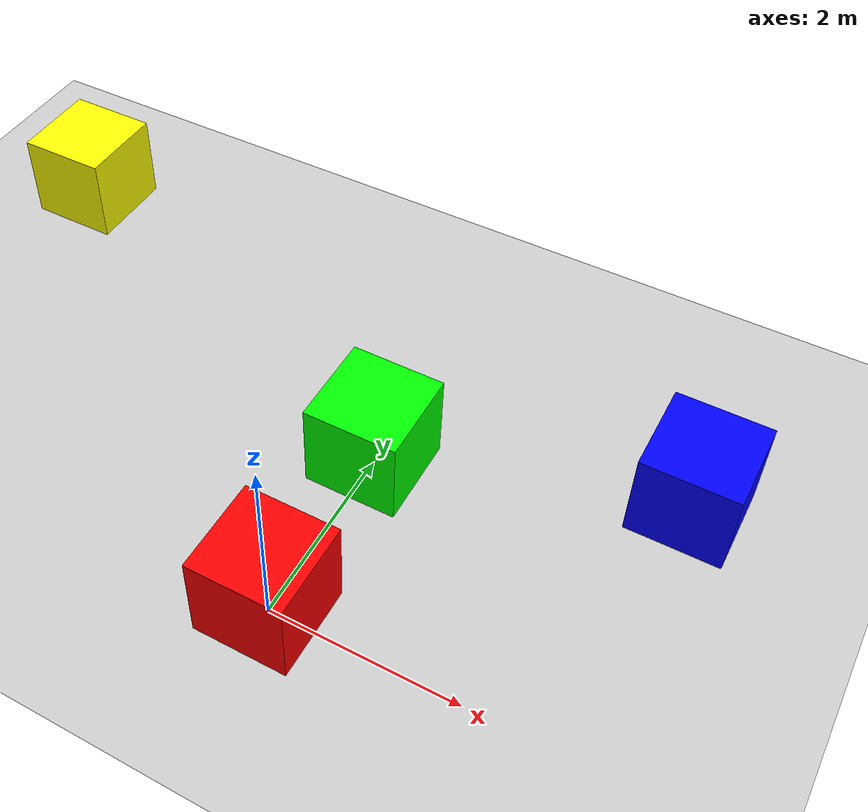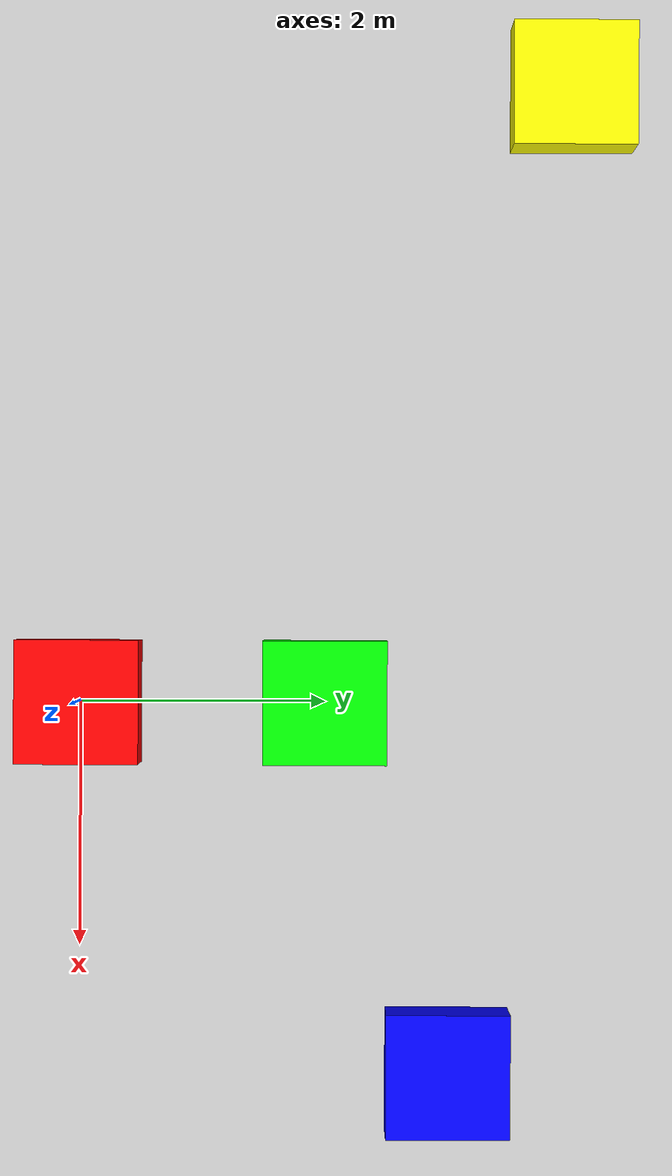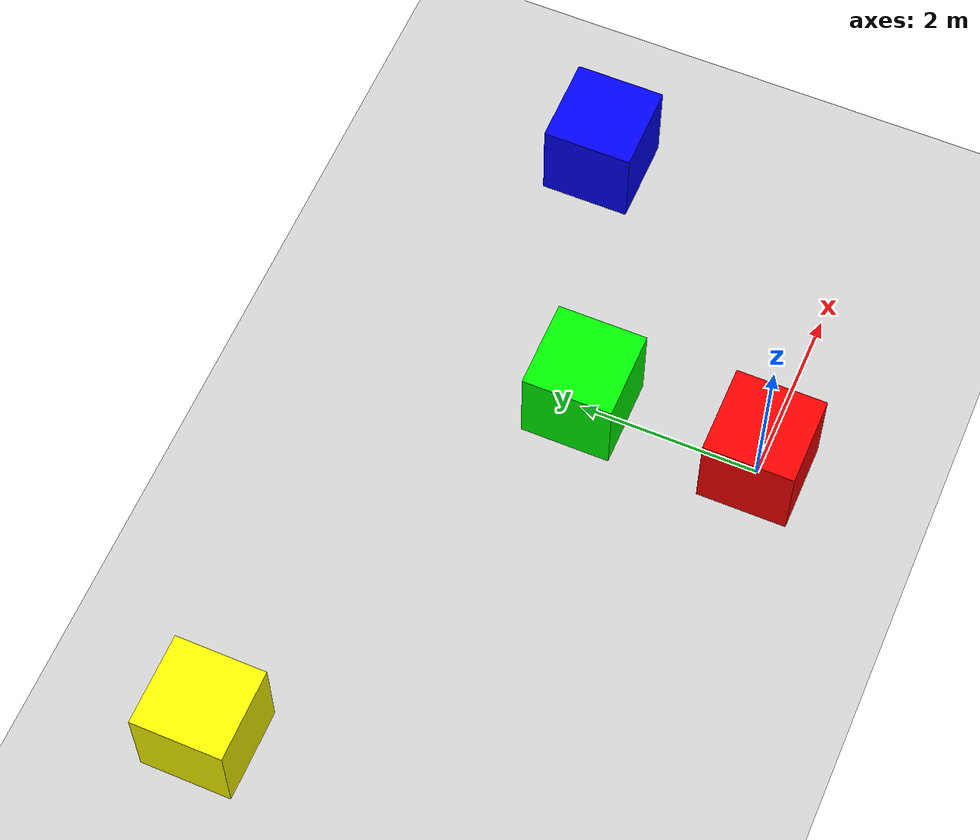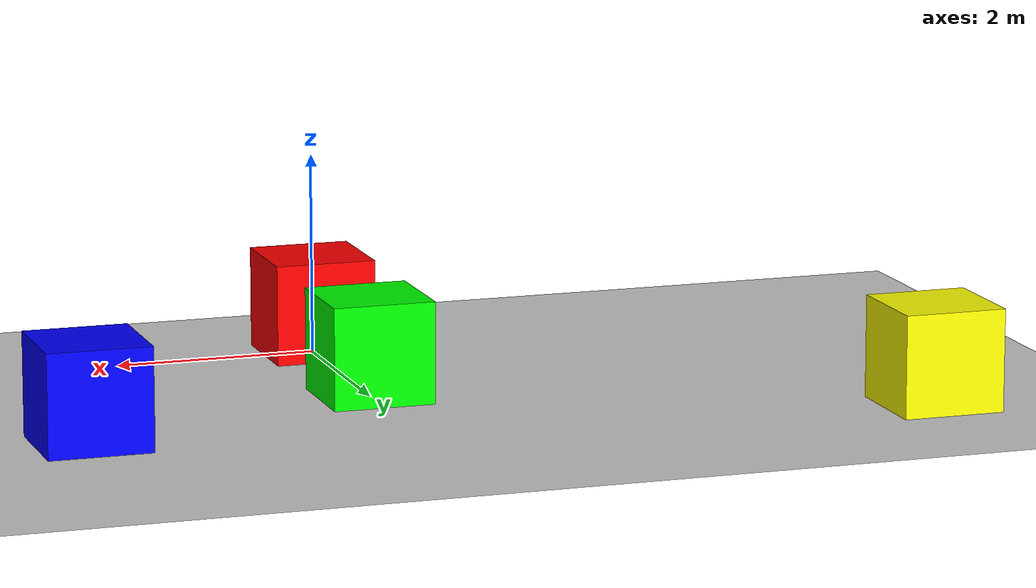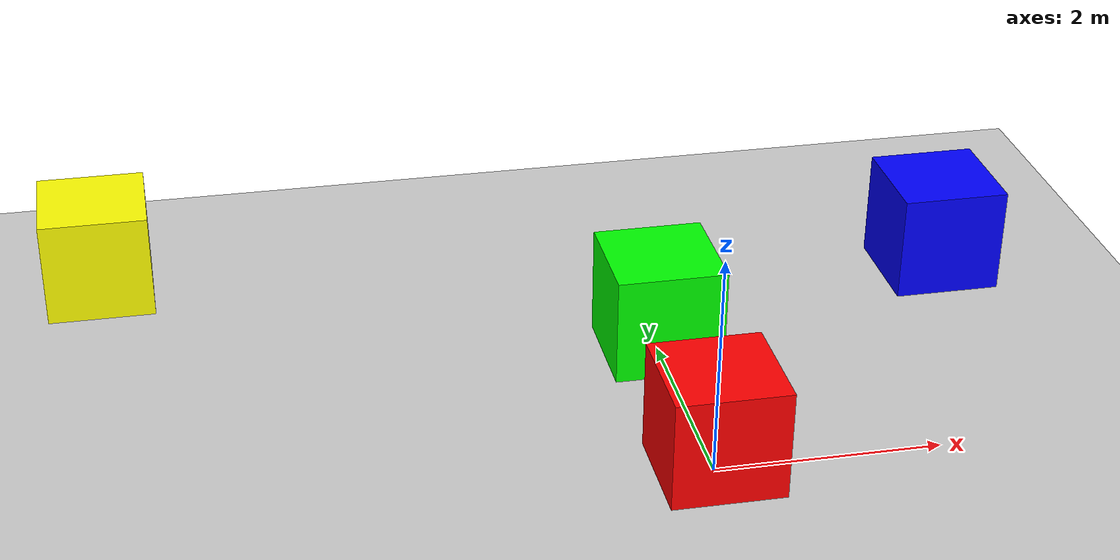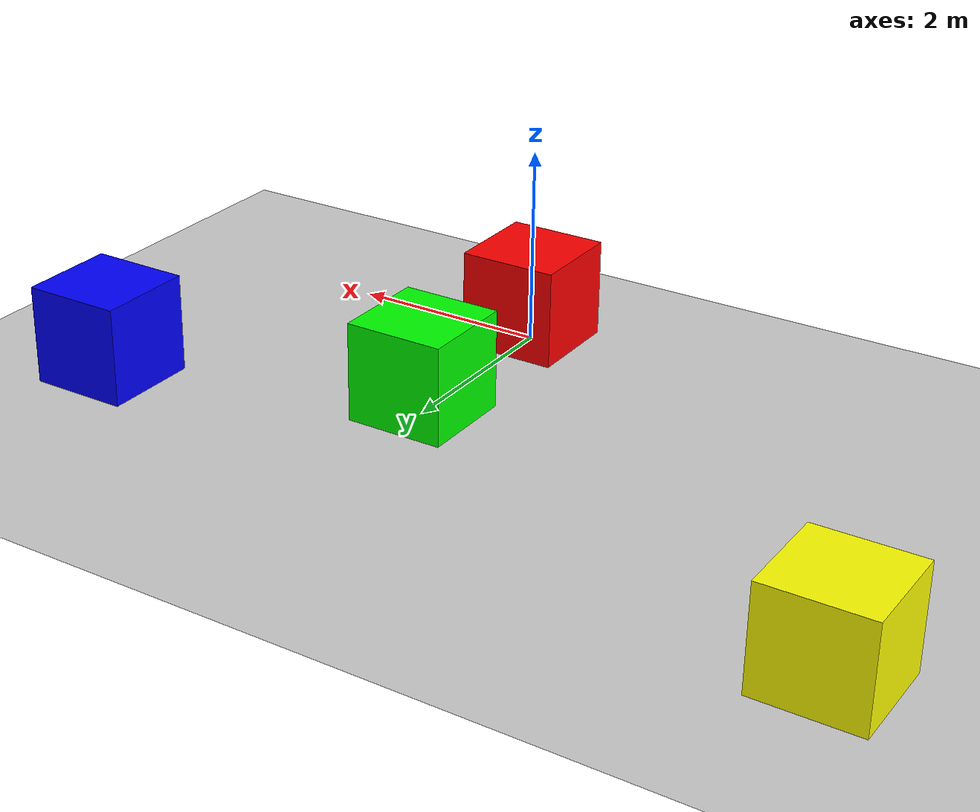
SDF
<?xml version="1.0" ?>
<sdf version="1.6">
  <world name="logical_audio_sensor">
    <physics name="1ms" type="ignored">
      <max_step_size>0.001</max_step_size>
      <real_time_factor>1.0</real_time_factor>
    </physics>
    <plugin
      filename="ignition-gazebo-physics-system"
      name="ignition::gazebo::systems::Physics">
    </plugin>
    <plugin
      filename="ignition-gazebo-user-commands-system"
      name="ignition::gazebo::systems::UserCommands">
    </plugin>
    <plugin
      filename="ignition-gazebo-scene-broadcaster-system"
      name="ignition::gazebo::systems::SceneBroadcaster">
    </plugin>

    <scene>
      <ambient>1.0 1.0 1.0</ambient>
      <background>0.8 0.8 0.8</background>
    </scene>

    <light type="directional" name="sun">
      <cast_shadows>true</cast_shadows>
      <pose>0 0 10 0 0 0</pose>
      <diffuse>0.8 0.8 0.8 1</diffuse>
      <specular>0.8 0.8 0.8 1</specular>
      <attenuation>
        <range>1000</range>
        <constant>0.9</constant>
        <linear>0.01</linear>
        <quadratic>0.001</quadratic>
      </attenuation>
      <direction>-0.5 0.1 -0.9</direction>
    </light>

    <model name="ground_plane">
      <static>true</static>
      <link name="link">
        <collision name="collision">
          <geometry>
            <plane>
              <normal>0 0 1</normal>
            </plane>
          </geometry>
        </collision>
        <visual name="visual">
          <geometry>
            <plane>
              <normal>0 0 1</normal>
              <size>100 100</size>
            </plane>
          </geometry>
          <material>
            <ambient>0.8 0.8 0.8 1</ambient>
            <diffuse>0.8 0.8 0.8 1</diffuse>
            <specular>0.8 0.8 0.8 1</specular>
          </material>
        </visual>
      </link>
    </model>

    <model name="source_1">
      <pose>0 0 0.5 0 0 0</pose>
      <link name="box_link">
        <inertial>
          <inertia>
            <ixx>1</ixx>
            <ixy>0</ixy>
            <ixz>0</ixz>
            <iyy>1</iyy>
            <iyz>0</iyz>
            <izz>1</izz>
          </inertia>
          <mass>1.0</mass>
        </inertial>
        <collision name="box_collision">
          <geometry>
            <box>
              <size>1 1 1</size>
            </box>
          </geometry>
        </collision>
        <visual name="box_visual">
          <geometry>
            <box>
              <size>1 1 1</size>
            </box>
          </geometry>
          <material>
            <ambient>1 0 0 1</ambient>
            <diffuse>1 0 0 1</diffuse>
            <specular>1 0 0 1</specular>
          </material>
        </visual>
      </link>
      <plugin filename="ignition-gazebo-logicalaudiosensorplugin-system" name="ignition::gazebo::systems::LogicalAudioSensorPlugin">
        <source>
          <id>1</id>
          <pose>.5 0 0 0 0 0</pose>
          <attenuation_function> linear</attenuation_function>
          <attenuation_shape>sphere</attenuation_shape>
          <inner_radius>1.0</inner_radius>
          <falloff_distance>5.0</falloff_distance>
          <volume_level>.8</volume_level>
          <playing>true</playing>
          <play_duration>10</play_duration>
        </source>
      </plugin>
    </model>

    <model name="source_2">
      <pose>3 3 0.5 0 0 0</pose>
      <link name="box_link">
        <inertial>
          <inertia>
            <ixx>1</ixx>
            <ixy>0</ixy>
            <ixz>0</ixz>
            <iyy>1</iyy>
            <iyz>0</iyz>
            <izz>1</izz>
          </inertia>
          <mass>1.0</mass>
        </inertial>
        <collision name="box_collision">
          <geometry>
            <box>
              <size>1 1 1</size>
            </box>
          </geometry>
        </collision>
        <visual name="box_visual">
          <geometry>
            <box>
              <size>1 1 1</size>
            </box>
          </geometry>
          <material>
            <ambient>0 0 1 1</ambient>
            <diffuse>0 0 1 1</diffuse>
            <specular>0 0 1 1</specular>
          </material>
        </visual>
      </link>
      <plugin filename="ignition-gazebo-logicalaudiosensorplugin-system" name="ignition::gazebo::systems::LogicalAudioSensorPlugin">
        <source>
          <id>2</id>
          <pose>0 0 0 0 0 0</pose>
          <attenuation_function>linear</attenuation_function>
          <attenuation_shape>sphere</attenuation_shape>
          <inner_radius>5.0</inner_radius>
          <falloff_distance>100.0</falloff_distance>
          <volume_level>.6</volume_level>
          <playing>false</playing>
          <play_duration>0</play_duration>
        </source>
      </plugin>
    </model>

    <model name="mic_1">
      <pose>0 2 0.5 0 0 0</pose>
      <link name="box_link">
        <inertial>
          <inertia>
            <ixx>1</ixx>
            <ixy>0</ixy>
            <ixz>0</ixz>
            <iyy>1</iyy>
            <iyz>0</iyz>
            <izz>1</izz>
          </inertia>
          <mass>1.0</mass>
        </inertial>
        <collision name="box_collision">
          <geometry>
            <box>
              <size>1 1 1</size>
            </box>
          </geometry>
        </collision>
        <visual name="box_visual">
          <geometry>
            <box>
              <size>1 1 1</size>
            </box>
          </geometry>
          <material>
            <ambient>0 1 0 1</ambient>
            <diffuse>0 1 0 1</diffuse>
            <specular>0 1 0 1</specular>
          </material>
        </visual>
      </link>
      <plugin filename="ignition-gazebo-logicalaudiosensorplugin-system" name="ignition::gazebo::systems::LogicalAudioSensorPlugin">
        <microphone>
          <id>1</id>
          <pose>0 .5 0 0 0 0</pose>
          <volume_threshold>.4</volume_threshold>
        </microphone>
      </plugin>
    </model>

    <model name="mic_2">
      <pose>-5 4 0.5 0 0 0</pose>
      <link name="box_link">
        <inertial>
          <inertia>
            <ixx>1</ixx>
            <ixy>0</ixy>
            <ixz>0</ixz>
            <iyy>1</iyy>
            <iyz>0</iyz>
            <izz>1</izz>
          </inertia>
          <mass>1.0</mass>
        </inertial>
        <collision name="box_collision">
          <geometry>
            <box>
              <size>1 1 1</size>
            </box>
          </geometry>
        </collision>
        <visual name="box_visual">
          <geometry>
            <box>
              <size>1 1 1</size>
            </box>
          </geometry>
          <material>
            <ambient>1 1 0 1</ambient>
            <diffuse>1 1 0 1</diffuse>
            <specular>1 1 0 1</specular>
          </material>
        </visual>
      </link>
      <plugin filename="ignition-gazebo-logicalaudiosensorplugin-system" name="ignition::gazebo::systems::LogicalAudioSensorPlugin">
        <microphone>
          <id>2</id>
          <pose>0.5 0.5 0.5 0 0 0</pose>
          <volume_threshold>.3</volume_threshold>
        </microphone>
      </plugin>
    </model>
  </world>
</sdf>
